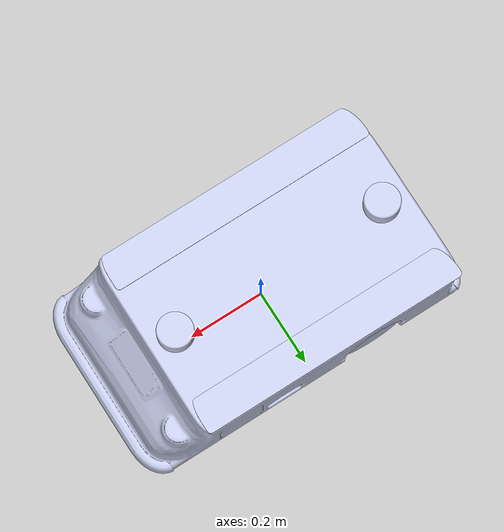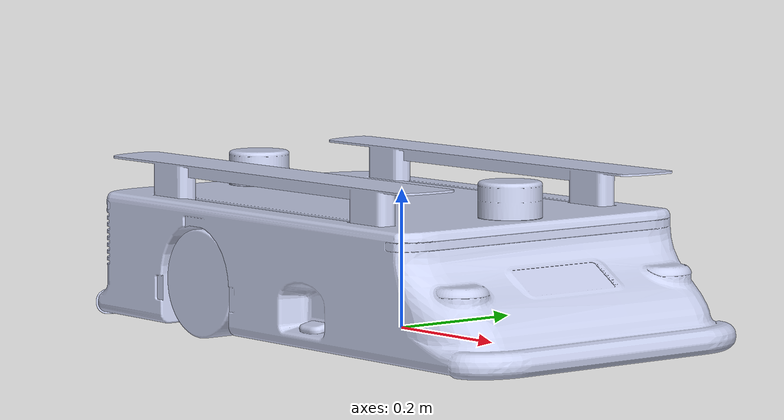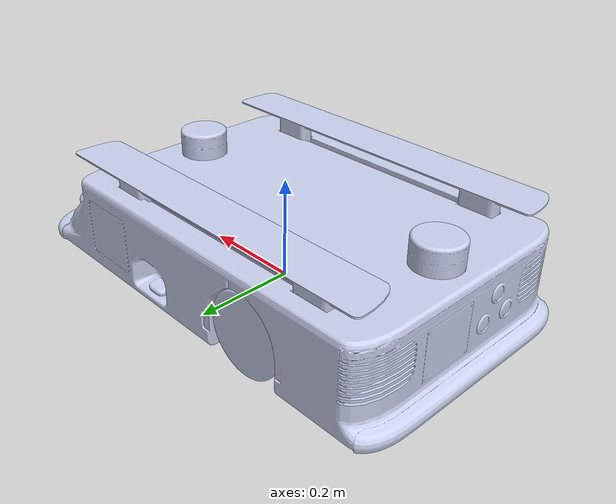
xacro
<?xml version="1.0"?>
<robot xmlns:xacro="http://www.ros.org/wiki/xacro" name="agv_robot">

    <xacro:include filename="$(find agv_description)/urdf/agv.gazebo.xml"/>

    <!-- base_footprint -->
    <link name="base_footprint"/>

    <!-- base_link -->
    <link name="base_link">
        <inertial>
            <origin xyz="-1.51807472482668E-05 2.79346181472073E-05 0.0866200775222906" rpy="0 0 0" />
            <mass value="64.7171962068877" />
            <inertia ixx="1.42225890496994" ixy="-0.000392754943773645" ixz="0.0708650035684445"
                     iyy="3.51249641237205" iyz="-0.000160647777377098" izz="4.57970566976989" />
        </inertial>
        <visual>
            <origin xyz="0 0 0" rpy="0 0 0" />
            <geometry>
                <mesh filename="package://agv_description/meshes/base_link.STL" />
            </geometry>
            <material name="">
                <color rgba="0.792156862745098 0.819607843137255 0.933333333333333 1" />
            </material>
        </visual>
        <collision>
            <origin xyz="0 0 0" rpy="0 0 0" />
            <geometry>
                <mesh filename="package://agv_description/meshes/base_link.STL" />
            </geometry>
        </collision>
    </link>

    <!-- base_footprint -> base_link joint -->
    <joint name="base_footprint_joint" type="fixed">
        <origin xyz="0 0 0" rpy="0 0 0"/>
        <parent link="base_footprint"/>
        <child link="base_link"/>
    </joint>

    <!-- Wheel and joint macro -->
    <xacro:include filename="$(find agv_description)/urdf/wheel.urdf.xacro"/>

    <!-- Create left and right wheel/joint -->
    <xacro:wheel name="right" inertial_xyz="-1.1102E-16 0.026 2.2204E-16" joint_xyz="-0.1621 -0.242 0.066"  />
    <xacro:wheel name="left" inertial_xyz="-1.1102E-16 -0.026 -1.6653E-16" joint_xyz="-0.1621 0.242 0.066" />

    <!-- Caster wheel and joint macro -->
    <xacro:include filename="$(find agv_description)/urdf/caster.urdf.xacro"/>

    <!-- Create 3 caster wheels -->
    <xacro:caster name="left" inertial_xyz="8.9465E-08 -5.5511E-17 0.019764" joint_xyz="0.3504 0.18406 0"/>
    <xacro:caster name="right" inertial_xyz="8.9465E-08 -2.2204E-16 0.019764" joint_xyz="0.35023 -0.18491 0"/>
    <xacro:caster name="back" inertial_xyz="8.9465E-08 0 0.019764" joint_xyz="-0.31668 -0.0019708 0"/>

    <!-- Lidar link and joint macro -->
    <xacro:include filename="$(find agv_description)/urdf/lidar.urdf.xacro"/>

    <!-- Create 2 lidars -->
    <xacro:lidar name="front" inertial_xyz="9.7076E-09 0 0.024888" joint_xyz="0.2379 0 0.1802" joint_rpy="0 0 0"/>
    <xacro:lidar name="back" inertial_xyz="9.7076E-09 -4.4409E-16 0.024888" joint_xyz="-0.3391 0 0.1802" joint_rpy="0 0 3.14"/>

    <!-- Upper link and joint macro -->
    <xacro:include filename="$(find agv_description)/urdf/upper_link.urdf.xacro"/>

    <!-- Create 2 upper links -->
    <xacro:upper_link name="left" inertial_xyz="-0.0002986 0.0023744 0.043863" joint_xyz="-0.0471 0.2 0.17"/>
    <xacro:upper_link name="right" inertial_xyz="-0.0002986 0.0023744 0.043863" joint_xyz="-0.0471 -0.2 0.17"/>

</robot>

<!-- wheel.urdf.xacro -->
<robot xmlns:xacro="http://www.ros.org/wiki/xacro" name="wheel">

    <xacro:macro name="wheel" params="name inertial_xyz joint_xyz">
        <link name="${name}_wheel">
            <inertial>
                <origin xyz="${inertial_xyz}" rpy="0 0 0" />
                <mass value="0.99202" />
                <inertia ixx="0.0017289" ixy="-1.1999E-19" ixz="2.0419E-19"
                         iyy="0.0030122" iyz="4.5246E-18" izz="0.0017289" />
            </inertial>
            <visual>
                <origin xyz="0 0 0" rpy="0 0 0" />
                <geometry>
                    <mesh filename="package://agv_description/meshes/${name}_wheel.STL" />
                </geometry>
                <material name="">
                    <color rgba="0.79216 0.81961 0.93333 1" />
                </material>
            </visual>
            <collision>
                <origin xyz="0 0 0" rpy="0 0 0" />
                <geometry>
                    <mesh filename="package://agv_description/meshes/${name}_wheel.STL" />
                </geometry>
            </collision>
        </link>

        <joint name="base_to_${name}_wheel" type="continuous">
            <origin xyz="${joint_xyz}" rpy="0 0 0" />
            <parent link="base_link" />
            <child link="${name}_wheel" />
            <axis xyz="0 1 0" />
        </joint>
    </xacro:macro>

</robot>

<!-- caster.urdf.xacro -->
<robot xmlns:xacro="http://www.ros.org/wiki/xacro" name="caster">

    <xacro:macro name="caster" params="name inertial_xyz joint_xyz">
        <link name="${name}_caster">
            <inertial>
                <origin xyz="${inertial_xyz}" rpy="0 0 0" />
                <mass value="0.25623" />
                <inertia ixx="0.00017108" ixy="-2.4081E-10" ixz="-5.2581E-12"
                         iyy="0.00016998" iyz="1.9178E-19" izz="0.00027267" />
            </inertial>
            <visual>
                <origin xyz="0 0 0" rpy="0 0 0" />
                <geometry>
                    <mesh filename="package://agv_description/meshes/${name}_caster.STL" />
                </geometry>
                <material name="">
                    <color rgba="0.79216 0.81961 0.93333 1" />
                </material>
            </visual>
            <collision>
                <origin xyz="0 0 0" rpy="0 0 0" />
                <geometry>
                    <mesh filename="package://agv_description/meshes/${name}_caster.STL" />
                </geometry>
            </collision>
        </link>

        <joint name="base_to_${name}_caster" type="continuous">
            <origin xyz="${joint_xyz}" rpy="0 0 0" />
            <parent link="base_link" />
            <child link="${name}_caster" />
            <axis xyz="0 0 1" />
        </joint>
    </xacro:macro>

</robot>

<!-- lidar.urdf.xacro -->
<robot xmlns:xacro="http://www.ros.org/wiki/xacro" name="lidar">

    <xacro:macro name="lidar" params="name inertial_xyz joint_xyz joint_rpy">
        <link name="${name}_lidar">
            <inertial>
                <origin xyz="${inertial_xyz}" rpy="0 0 0" />
                <mass value="0.31659" />
                <inertia ixx="0.00022501" ixy="-7.9146E-11" ixz="-7.5617E-11"
                         iyy="0.000225" iyz="-5.4184E-19" izz="0.00031918" />
            </inertial>
            <visual>
                <origin xyz="0 0 0" rpy="0 0 0" />
                <geometry>
                    <mesh filename="package://agv_description/meshes/${name}_lidar.STL" />
                </geometry>
                <material name="">
                    <color rgba="0.79216 0.81961 0.93333 1" />
                </material>
            </visual>
            <collision>
                <origin xyz="0 0 0" rpy="0 0 0" />
                <geometry>
                    <mesh filename="package://agv_description/meshes/${name}_lidar.STL" />
                </geometry>
            </collision>
        </link>
        <joint name="base_to_${name}_lidar" type="fixed">
            <origin xyz="${joint_xyz}" rpy="${joint_rpy}" />
            <parent link="base_link" />
            <child link="${name}_lidar" />
            <axis xyz="0 0 0" />
        </joint>
    </xacro:macro>

</robot>

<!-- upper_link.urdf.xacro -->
<robot xmlns:xacro="http://www.ros.org/wiki/xacro" name="upper_link">

    <xacro:macro name="upper_link" params="name inertial_xyz joint_xyz">
        <link name="${name}_upper_link">
            <inertial>
                <origin xyz="${inertial_xyz}" rpy="0 0 0" />
                <mass value="0.49014" />
                <inertia ixx="0.00034371" ixy="9.1474E-06" ixz="2.5813E-06"
                         iyy="0.022204" iyz="-2.0702E-05" izz="0.022168" />
            </inertial>
            <visual>
                <origin xyz="0 0 0" rpy="0 0 0" />
                <geometry>
                    <mesh filename="package://agv_description/meshes/${name}_upper_link.STL" />
                </geometry>
                <material name="">
                    <color rgba="0.79216 0.81961 0.93333 1" />
                </material>
            </visual>
            <collision>
            <origin xyz="0 0 0" rpy="0 0 0" />
            <geometry>
                <mesh filename="package://agv_description/meshes/${name}_upper_link.STL" />
            </geometry>
            </collision>
        </link>
        <joint name="base_to_${name}_upper_link" type="fixed">
            <origin xyz="${joint_xyz}" rpy="0 0 0" />
            <parent link="base_link" />
            <child link="${name}_upper_link" />
            <axis xyz="0 0 0" />
        </joint>
    </xacro:macro>

</robot>
